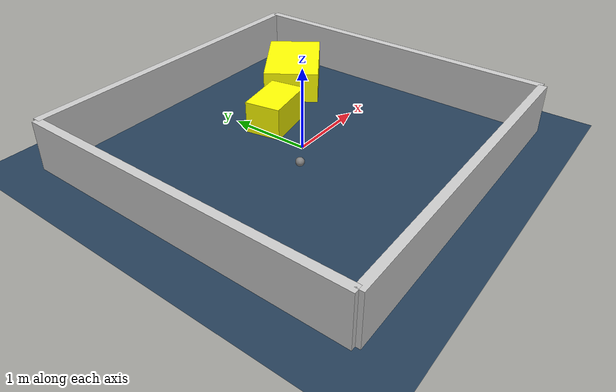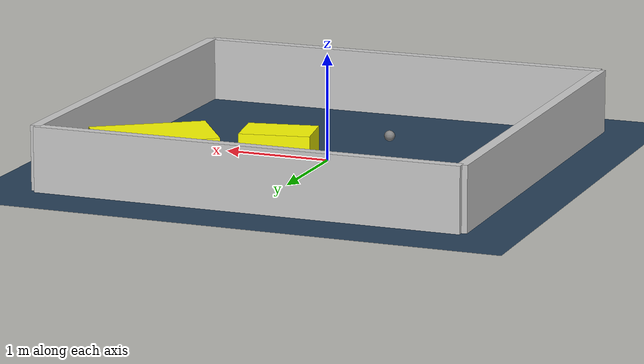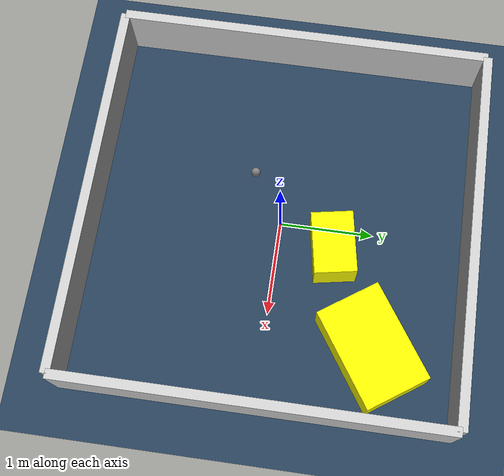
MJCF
<?xml version="1.0" ?>
<mujoco model="generated_environment">
  <option timestep="0.01" integrator="RK4" cone="elliptic"/>
  <default>
    <geom density="1"/>
  </default>
  <asset>
    <texture builtin="gradient" height="3072" rgb1="0.3 0.5 0.7" rgb2="0 0 0" type="skybox" width="512"/>
    <texture builtin="checker" height="300" mark="edge" markrgb="0.8 0.8 0.8" name="groundplane" rgb1="0.2 0.3 0.4" rgb2="0.1 0.2 0.3" type="2d" width="300"/>
    <material name="groundplane" reflectance="0.2" texrepeat="5 5" texture="groundplane" texuniform="true"/>
    <material name="robot" rgba="0.0 1.0 0.0 1"/>
  </asset>
  <worldbody>
    <light dir="0 0 -1" directional="true" pos="0 0 1.5"/>
    <geom condim="4" friction="1.0 0.005 0.001" material="groundplane" name="floor" size="0 0 0.05" type="plane"/>
    <body name="walls">
      <geom name="wall_1" condim="4" pos="-2.0 0.0 0.3" rgba="0.800000011920929 0.800000011920929 0.800000011920929 1.0" size="0.05 2.0 0.3" type="box"/>
      <geom name="wall_2" condim="4" pos="2.0 0.0 0.3" rgba="0.800000011920929 0.800000011920929 0.800000011920929 1.0" size="0.05 2.0 0.3" type="box"/>
      <geom name="wall_3" condim="4" pos="0.0 -2.0 0.3" rgba="0.800000011920929 0.800000011920929 0.800000011920929 1.0" size="2.0 0.05 0.3" type="box"/>
      <geom name="wall_4" condim="4" pos="0.0 2.0 0.3" rgba="0.800000011920929 0.800000011920929 0.800000011920929 1.0" size="2.0 0.05 0.3" type="box"/>
    </body>
    <body name="robot">
      <joint name="joint_x" type="slide" pos="0 0 0" axis="1 0 0"/>
      <joint name="joint_y" type="slide" pos="0 0 0" axis="0 1 0"/>
      <geom name="robot" type="sphere" pos="-0.4870143956311619 -0.333520518059891 0.2" size="0.05" mass="5." friction="1.0 0.005 0.0001" condim="4"/>
      <site name="sensor_ball"/>
    </body>
    <body name="obstacle_1_movable">
      <geom name="obstacle_1_movable" condim="4" pos="1.2530701075330892 1.0983216286402657 0.2" euler="0 0 124.2499568701856" friction="1.0 0.005 0.001" rgba="1 1 0 1" size="0.35068016456558426 0.5402079695706707 0.2" type="box" mass="0.1"/>
      <joint type="free"/>
    </body>
    <body name="obstacle_2_movable">
      <geom name="obstacle_2_movable" condim="4" pos="0.24247710538420186 0.5915673672150725 0.2" euler="0 0 280.3072759232703" friction="1.0 0.005 0.001" rgba="1 1 0 1" size="0.22142931962284035 0.327357107666383 0.2" type="box" mass="0.1"/>
      <joint type="free"/>
    </body>
  </worldbody>
  <actuator>
    <motor name="actuator_x" joint="joint_x" gear="1" ctrlrange="-1 1"/>
    <motor name="actuator_y" joint="joint_y" gear="1" ctrlrange="-1 1"/>
  </actuator>
</mujoco>
